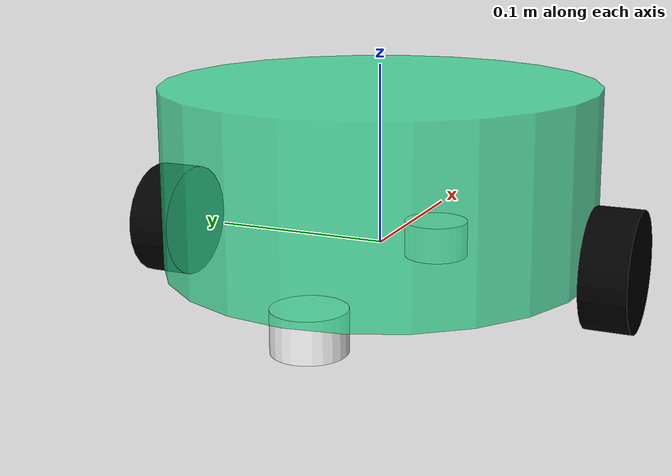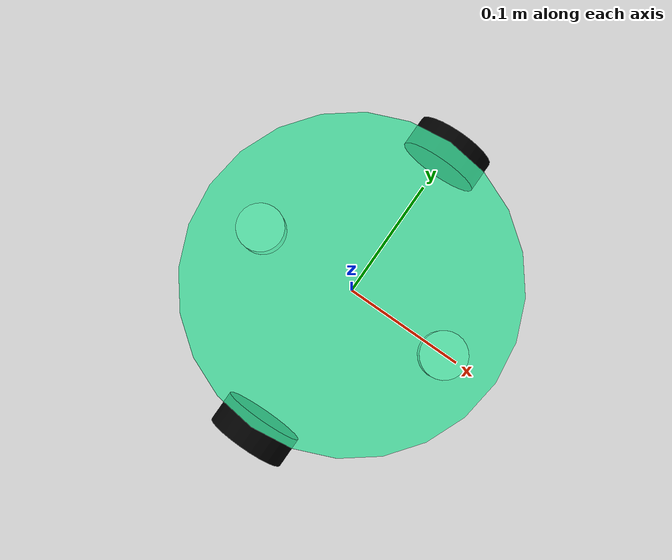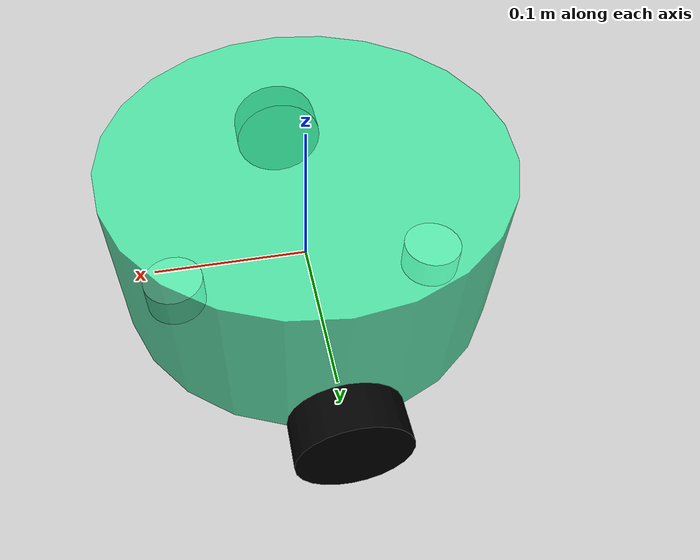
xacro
<?xml version="1.0"?>
<robot xmlns:xacro="http://www.ros.org/wiki/xacro">

    <xacro:include filename= "inertial_macros.xacro"/>

    <material name="white">
        <color rgba="1 1 1 1"/>
    </material>

    <material name="green">
        <color rgba="0.231 0.906 0.624 0.8"/>
    </material>

    <material name="orange">
        <color rgba="0.898 0.294 0.071 0.8"/>
    </material>

    <material name="black">
        <color rgba="0 0 0 1"/>
    </material>

    <material name="red">
        <color rgba="1 0 0 1"/>
    </material>

    <link name="base_link">
    </link>

    <joint name = "chassis_joint" type = "fixed">
        <parent link = "base_link"/>
        <child link = "chassis_link"/>
        <origin xyz = "0 0 0.04"/>
    </joint>

    <link name = "base_footprint">
    </link>

    <joint name = "base_footprint_joint" type = "fixed">
        <parent link = "base_link"/>
        <child link = "base_footprint"/>
        <origin xyz = "0 0 0" rpy="0 0 0"/>
    </joint>

    <link name="chassis_link">
        <visual>
            <origin xyz="0 0 0"/>
            <geometry>
                <cylinder radius = "0.120" length = "0.100"/>
            </geometry>
            <material name = "green"/>
        </visual>
        <collision>
            <origin xyz="0 0 0"/>
            <geometry>
                <cylinder radius = "0.120" length = "0.100"/>
            </geometry>
        </collision>
        <xacro:inertial_cylinder mass = "2" length= "0.100" radius = "0.120">
            <origin xyz = "0 0 0 " rpy = "0 0 0"/>
        </xacro:inertial_cylinder>

    </link>

    <gazebo reference = "chassis_link">
        <material>Gazebo/Red</material>
    </gazebo>

    <joint name= "left_wheel_joint" type = "continuous">
        <parent link = "base_link"/>
        <child link = "left_wheel_link"/>
        <origin xyz = "0 0.1325 0" rpy = "-${pi/2} 0 0"/>
        <axis xyz = "0 0 1"/>
    </joint>

    <link name = "left_wheel_link">

        <visual>
            <geometry>
                <cylinder radius = "0.0325" length = "0.025"/>
            </geometry>
            <material name = "black"/>
        </visual>

        <collision>
            <geometry>
                <cylinder radius = "0.0325" length = "0.025"/>
            </geometry>
        </collision>

        <xacro:inertial_cylinder mass = "0.029" length= "0.025" radius = "0.0325">
            <origin xyz = "0 0 0 " rpy = "0 0 0"/>
        </xacro:inertial_cylinder>
    </link>

    <gazebo reference = "left_wheel_link">
        <material>Gazebo/Black</material>
    </gazebo>

    <joint name= "right_wheel_joint" type = "continuous">
        <parent link = "base_link"/>
        <child link = "right_wheel_link"/>
        <origin xyz = "0 -0.1325 0" rpy = "${pi/2} 0 0"/>
        <axis xyz = "0 0 -1"/>
    </joint>

    <link name = "right_wheel_link">
        <visual>
            <geometry>
                <cylinder radius = "0.0325" length = "0.025"/>
            </geometry>
            <material name = "black"/>
        </visual>

        <collision>
            <geometry>
                <cylinder radius = "0.0325" length = "0.025"/>
            </geometry>
        </collision>

        <xacro:inertial_cylinder mass = "0.029" length= "0.025" radius = "0.0325">
            <origin xyz = "0 0 0 " rpy = "0 0 0"/>
        </xacro:inertial_cylinder>

    </link>

    <gazebo reference = "right_wheel_link">
        <material>Gazebo/Black</material>
    </gazebo>

    <joint name = "front_caster_wheel_joint" type = "fixed">
        <parent link = "base_link"/>
        <child link = "front_caster_wheel_link"/>
        <origin xyz = "0.09 0 -0.02125"/>
    </joint>

    <link name = "front_caster_wheel_link">
        <visual>
            <geometry>
                <cylinder radius = "0.02" length = "0.0225"/>
            </geometry>
            <material name = "white"/>
        </visual>
        <collision>
            <geometry>
                <cylinder radius = "0.02" length = "0.0225"/>
            </geometry>
        </collision>

        <xacro:inertial_cylinder mass = "0.025" length= "0.0225" radius = "0.02">
            <origin xyz = "0 0 0 " rpy = "0 0 0"/>
        </xacro:inertial_cylinder>
    </link>

    <gazebo reference = "front_caster_wheel_link">
        <material>Gazebo/Grey</material>
        <mu1 value="0.001"/>
        <mu2 value="0.001"/>
    </gazebo>

    <joint name = "back_caster_wheel_joint" type = "fixed">
        <parent link = "base_link"/>
        <child link = "back_caster_wheel_link"/>
        <origin xyz = "-0.09 0 -0.02125"/>
    </joint>

    <link name = "back_caster_wheel_link">
        <visual>
            <geometry>
                <cylinder radius = "0.02" length = "0.0225"/>
            </geometry>
            <material name = "white"/>
        </visual>

        <collision>
            <geometry>
                <cylinder radius = "0.02" length = "0.0225"/>
            </geometry>
        </collision>

        <xacro:inertial_cylinder mass = "0.025" length= "0.0225" radius = "0.02">
            <origin xyz = "0 0 0 " rpy = "0 0 0"/>
        </xacro:inertial_cylinder>
    </link>

    <gazebo reference = "back_caster_wheel_link">
        <material>Gazebo/Grey</material>
        <mu1 value="0.001"/>
        <mu2 value="0.001"/>
    </gazebo>

</robot>
